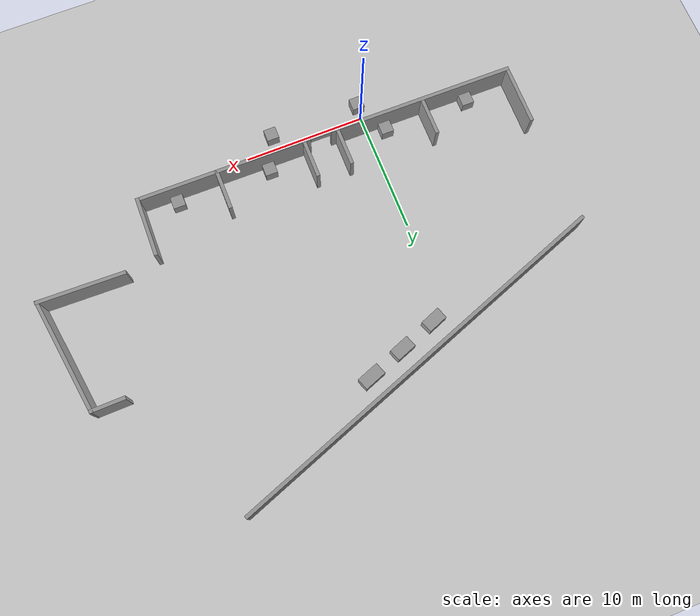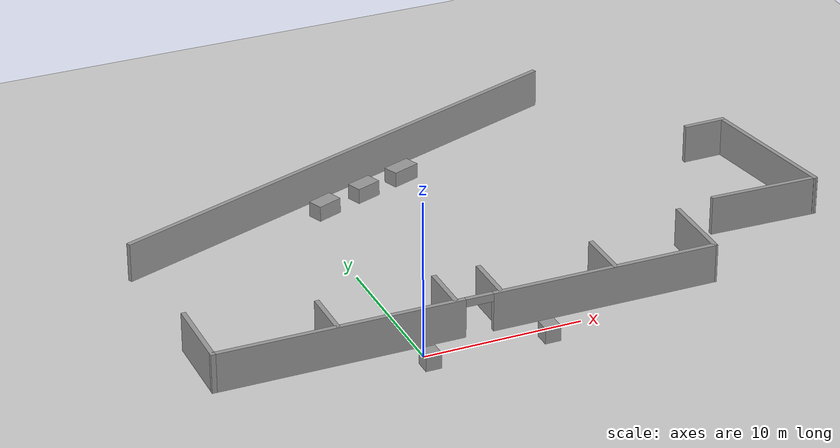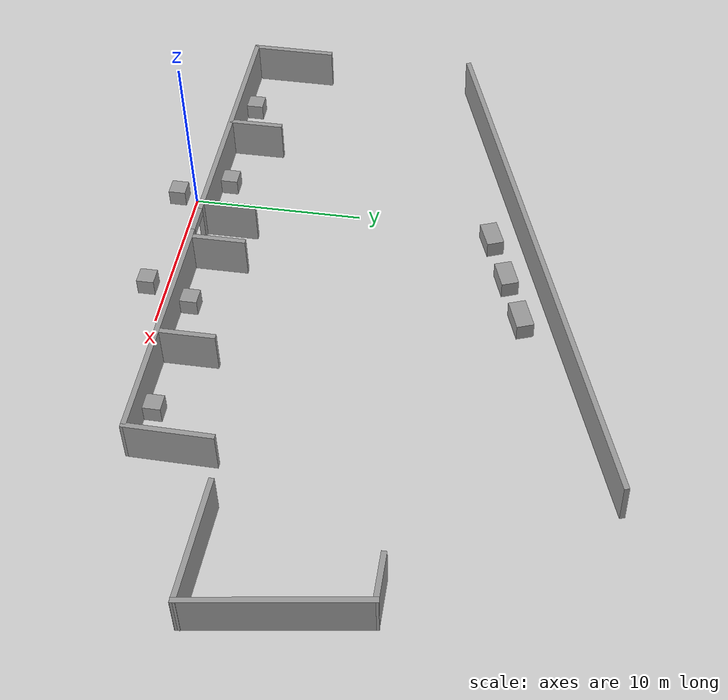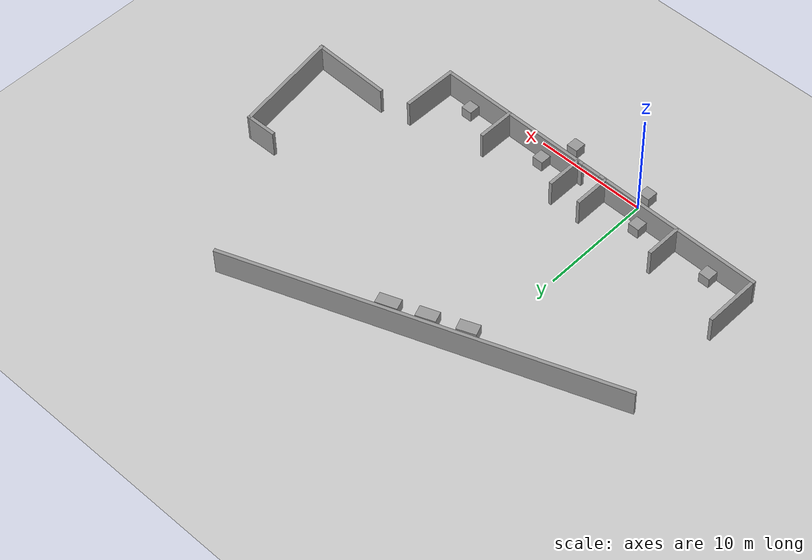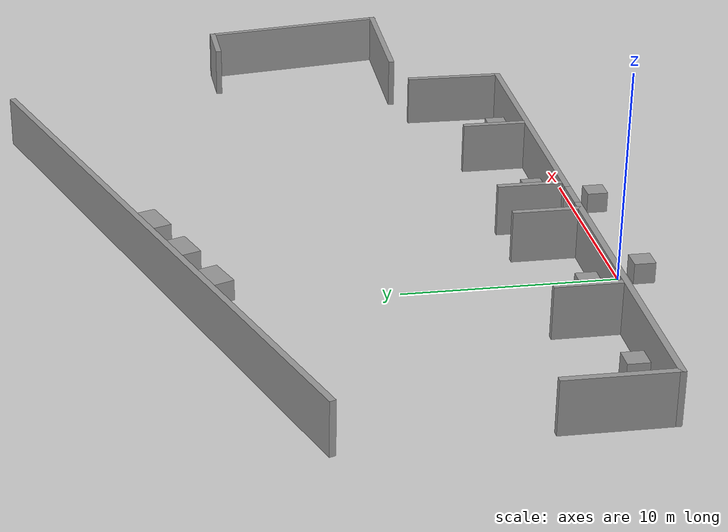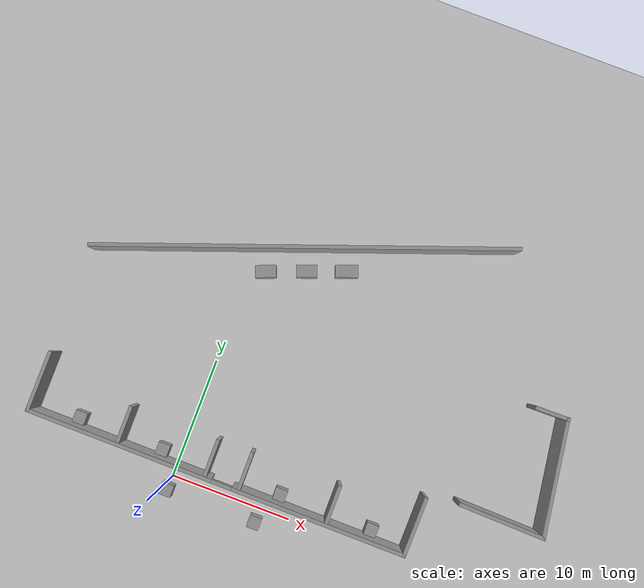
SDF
<sdf version="1.7">
 <world name="default">
  <light name="sun" type="directional">
   <pose>0 0 10 0 -0 0</pose>
   <diffuse>0.8 0.8 0.8 1</diffuse>
   <specular>0.2 0.2 0.2 1</specular>
   <attenuation>
    <range>1000</range>
    <constant>0.9</constant>
    <linear>0.01</linear>
    <quadratic>0.001</quadratic>
   </attenuation>
   <direction>-0.5 0.1 -0.9</direction>
   <spot><inner_angle>0</inner_angle><outer_angle>0</outer_angle><falloff>0</falloff></spot>
  </light>
  <model name="ground_plane">
   <static>1</static>
   <link name="link">
    <collision name="collision">
     <geometry><plane><normal>0 0 1</normal><size>100 100</size></plane></geometry>
     <surface><friction><ode><mu>100</mu><mu2>50</mu2></ode></friction></surface>
    </collision>
    <visual name="visual">
     <cast_shadows>0</cast_shadows>
     <geometry><plane><normal>0 0 1</normal><size>100 100</size></plane></geometry>
     <material>
      <script><uri>file://media/materials/scripts/gazebo.material</uri><name>Gazebo/Grey</name></script>
     </material>
    </visual>
   </link>
  </model>
  <gravity>0 0 -9.8</gravity>
  <magnetic_field>6e-06 2.3e-05 -4.2e-05</magnetic_field>
  <atmosphere type="adiabatic"/>
  <physics type="ode">
   <max_step_size>0.001</max_step_size>
   <real_time_factor>1</real_time_factor>
   <real_time_update_rate>1000</real_time_update_rate>
  </physics>
  <scene><ambient>0.4 0.4 0.4 1</ambient><background>0.7 0.7 0.7 1</background><shadows>1</shadows></scene>
  <spherical_coordinates>
   <surface_model>EARTH_WGS84</surface_model>
   <latitude_deg>0</latitude_deg>
   <longitude_deg>0</longitude_deg>
   <elevation>0</elevation>
   <heading_deg>0</heading_deg>
  </spherical_coordinates>
  <model name="WaA">
   <pose>8.28373 13.936 0 0 -0 3.14068</pose>
   <link name="Wall_11">
    <collision name="Wall_11_Collision">
     <geometry><box><size>3.25 0.3 2.5</size></box></geometry>
     <pose>0 0 1.25 0 -0 0</pose>
    </collision>
    <visual name="Wall_11_Visual">
     <pose>0 0 1.25 0 -0 0</pose>
     <geometry><box><size>3.25 0.3 2.5</size></box></geometry>
     <material>
      <script><uri>file://media/materials/scripts/gazebo.material</uri><name>Gazebo/Grey</name></script>
      <ambient>1 1 1 1</ambient>
     </material>
     <meta><layer>0</layer></meta>
    </visual>
    <pose>2.87692 11.1777 0 0 -0 -1.5708</pose>
   </link>
   <link name="Wall_13">
    <collision name="Wall_13_Collision">
     <geometry><box><size>3.40033 0.3 2.5</size></box></geometry>
     <pose>0 0 1.25 0 -0 0</pose>
    </collision>
    <visual name="Wall_13_Visual">
     <pose>0 0 1.25 0 -0 0</pose>
     <geometry><box><size>3.40033 0.3 2.5</size></box></geometry>
     <material>
      <script><uri>file://media/materials/scripts/gazebo.material</uri><name>Gazebo/Grey</name></script>
      <ambient>1 1 1 1</ambient>
     </material>
     <meta><layer>0</layer></meta>
    </visual>
    <pose>-4.46008 11.2527 0 0 -0 -1.5708</pose>
   </link>
   <link name="Wall_15">
    <collision name="Wall_15_Collision">
     <geometry><box><size>7.22818 0.3 2.5</size></box></geometry>
     <pose>0 0 1.25 0 -0 0</pose>
    </collision>
    <visual name="Wall_15_Visual">
     <pose>0 0 1.25 0 -0 0</pose>
     <geometry><box><size>7.22818 0.3 2.5</size></box></geometry>
     <material>
      <script><uri>file://media/materials/scripts/gazebo.material</uri><name>Gazebo/Grey</name></script>
      <ambient>1 1 1 1</ambient>
     </material>
     <meta><layer>0</layer></meta>
    </visual>
    <pose>-17.2551 7.67771 0 0 -0 3.11647</pose>
   </link>
   <link name="Wall_16">
    <collision name="Wall_16_Collision">
     <geometry><box><size>9.77782 0.3 2.5</size></box></geometry>
     <pose>0 0 1.25 0 -0 0</pose>
    </collision>
    <visual name="Wall_16_Visual">
     <pose>0 0 1.25 0 -0 0</pose>
     <geometry><box><size>9.77782 0.3 2.5</size></box></geometry>
     <material>
      <script><uri>file://media/materials/scripts/gazebo.material</uri><name>Gazebo/Grey</name></script>
      <ambient>1 1 1 1</ambient>
     </material>
     <meta><layer>0</layer></meta>
    </visual>
    <pose>-20.0186 3.07771 0 0 -0 -1.42265</pose>
   </link>
   <link name="Wall_17">
    <collision name="Wall_17_Collision">
     <geometry><box><size>2.85381 0.3 2.5</size></box></geometry>
     <pose>0 0 1.25 0 -0 0</pose>
    </collision>
    <visual name="Wall_17_Visual">
     <pose>0 0 1.25 0 -0 0</pose>
     <geometry><box><size>2.85381 0.3 2.5</size></box></geometry>
     <material>
      <script><uri>file://media/materials/scripts/gazebo.material</uri><name>Gazebo/Grey</name></script>
      <ambient>1 1 1 1</ambient>
     </material>
     <meta><layer>0</layer></meta>
    </visual>
    <pose>-18.0421 -1.59179 0 0 -0 0.013703</pose>
   </link>
   <link name="Wall_19">
    <collision name="Wall_19_Collision">
     <geometry><box><size>34.2393 0.3 2.5</size></box></geometry>
     <pose>0 0 1.25 0 -0 0</pose>
    </collision>
    <visual name="Wall_19_Visual">
     <pose>0 0 1.25 0 -0 0</pose>
     <geometry><box><size>34.2393 0.3 2.5</size></box></geometry>
     <material>
      <script><uri>file://media/materials/scripts/gazebo.material</uri><name>Gazebo/Grey</name></script>
      <ambient>1 1 1 1</ambient>
     </material>
     <meta><layer>0</layer></meta>
    </visual>
    <pose>4.75892 -6.99579 0 0 -0 0.350611</pose>
   </link>
   <link name="Wall_2">
    <collision name="Wall_2_Collision">
     <geometry><box><size>4.98926 0.3 2.5</size></box></geometry>
     <pose>0 0 1.25 0 -0 0</pose>
    </collision>
    <visual name="Wall_2_Visual">
     <pose>0 0 1.25 0 -0 0</pose>
     <geometry><box><size>4.98926 0.3 2.5</size></box></geometry>
     <material>
      <script><uri>file://media/materials/scripts/gazebo.material</uri><name>Gazebo/Grey</name></script>
      <ambient>1 1 1 1</ambient>
     </material>
     <meta><layer>0</layer></meta>
    </visual>
    <pose>-11.0566 10.5202 0 0 -0 1.55608</pose>
   </link>
   <link name="Wall_3">
    <pose>4.75942 12.7762 0 0 -0 -0.005608</pose>
    <visual name="Wall_3_Visual_0">
     <pose>-8.64145 0 1.25 0 -0 0</pose>
     <geometry><box><size>14.5808 0.3 2.5</size></box></geometry>
     <material>
      <script><uri>file://media/materials/scripts/gazebo.material</uri><name>Gazebo/Grey</name></script>
      <ambient>1 1 1 1</ambient>
     </material>
     <meta><layer>0</layer></meta>
    </visual>
    <collision name="Wall_3_Collision_0">
     <geometry><box><size>14.5808 0.3 2.5</size></box></geometry>
     <pose>-8.64145 0 1.25 0 -0 0</pose>
    </collision>
    <visual name="Wall_3_Visual_1">
     <pose>8.16107 0 1.25 0 -0 0</pose>
     <geometry><box><size>15.5415 0.3 2.5</size></box></geometry>
     <material>
      <script><uri>file://media/materials/scripts/gazebo.material</uri><name>Gazebo/Grey</name></script>
      <ambient>1 1 1 1</ambient>
     </material>
     <meta><layer>0</layer></meta>
    </visual>
    <collision name="Wall_3_Collision_1">
     <geometry><box><size>15.5415 0.3 2.5</size></box></geometry>
     <pose>8.16107 0 1.25 0 -0 0</pose>
    </collision>
    <visual name="Wall_3_Visual_2">
     <pose>-0.480377 0 2.25 0 -0 0</pose>
     <geometry><box><size>1.74139 0.3 0.5</size></box></geometry>
     <material>
      <script><uri>file://media/materials/scripts/gazebo.material</uri><name>Gazebo/Grey</name></script>
      <ambient>1 1 1 1</ambient>
     </material>
     <meta><layer>0</layer></meta>
    </visual>
    <collision name="Wall_3_Collision_2">
     <geometry><box><size>1.74139 0.3 0.5</size></box></geometry>
     <pose>-0.480377 0 2.25 0 -0 0</pose>
    </collision>
   </link>
   <link name="Wall_5">
    <collision name="Wall_5_Collision">
     <geometry><box><size>5.08438 0.3 2.5</size></box></geometry>
     <pose>0 0 1.25 0 -0 0</pose>
    </collision>
    <visual name="Wall_5_Visual">
     <pose>0 0 1.25 0 -0 0</pose>
     <geometry><box><size>5.08438 0.3 2.5</size></box></geometry>
     <material>
      <script><uri>file://media/materials/scripts/gazebo.material</uri><name>Gazebo/Grey</name></script>
      <ambient>1 1 1 1</ambient>
     </material>
     <meta><layer>0</layer></meta>
    </visual>
    <pose>20.5294 10.2957 0 0 -0 -1.5756</pose>
   </link>
   <link name="Wall_7">
    <collision name="Wall_7_Collision">
     <geometry><box><size>3.25 0.3 2.5</size></box></geometry>
     <pose>0 0 1.25 0 -0 0</pose>
    </collision>
    <visual name="Wall_7_Visual">
     <pose>0 0 1.25 0 -0 0</pose>
     <geometry><box><size>3.25 0.3 2.5</size></box></geometry>
     <material>
      <script><uri>file://media/materials/scripts/gazebo.material</uri><name>Gazebo/Grey</name></script>
      <ambient>1 1 1 1</ambient>
     </material>
     <meta><layer>0</layer></meta>
    </visual>
    <pose>13.0429 11.1497 0 0 -0 -1.5708</pose>
   </link>
   <link name="Wall_9">
    <collision name="Wall_9_Collision">
     <geometry><box><size>3.25 0.3 2.5</size></box></geometry>
     <pose>0 0 1.25 0 -0 0</pose>
    </collision>
    <visual name="Wall_9_Visual">
     <pose>0 0 1.25 0 -0 0</pose>
     <geometry><box><size>3.25 0.3 2.5</size></box></geometry>
     <material>
      <script><uri>file://media/materials/scripts/gazebo.material</uri><name>Gazebo/Grey</name></script>
      <ambient>1 1 1 1</ambient>
     </material>
     <meta><layer>0</layer></meta>
    </visual>
    <pose>5.72892 11.1957 0 0 -0 -1.5708</pose>
   </link>
   <static>1</static>
  </model>
  <model name="unit_box">
   <pose>7.47675 -1.02961 0.499995 -1e-05 0 0</pose>
   <link name="link">
    <inertial>
     <mass>1</mass>
     <inertia>
      <ixx>0.166667</ixx>
      <ixy>0</ixy>
      <ixz>0</ixz>
      <iyy>0.166667</iyy>
      <iyz>0</iyz>
      <izz>0.166667</izz>
     </inertia>
    </inertial>
    <collision name="collision"><geometry><box><size>1 1 1</size></box></geometry></collision>
    <visual name="visual">
     <geometry><box><size>1 1 1</size></box></geometry>
     <material>
      <script><name>Gazebo/Grey</name><uri>file://media/materials/scripts/gazebo.material</uri></script>
     </material>
    </visual>
   </link>
   <static>1</static>
  </model>
  <model name="unit_box_0">
   <pose>8.6378 1.78081 0.5 0 0 -0.006406</pose>
   <link name="link">
    <inertial>
     <mass>1</mass>
     <inertia>
      <ixx>0.166667</ixx>
      <ixy>0</ixy>
      <ixz>0</ixz>
      <iyy>0.166667</iyy>
      <iyz>0</iyz>
      <izz>0.166667</izz>
     </inertia>
    </inertial>
    <collision name="collision"><geometry><box><size>1 1 1</size></box></geometry></collision>
    <visual name="visual">
     <geometry><box><size>1 1 1</size></box></geometry>
     <material>
      <script><name>Gazebo/Grey</name><uri>file://media/materials/scripts/gazebo.material</uri></script>
     </material>
    </visual>
   </link>
   <static>1</static>
  </model>
  <model name="unit_box_1">
   <pose>-1.44849 1.84705 0.499995 0 -1e-05 -0.005498</pose>
   <link name="link">
    <inertial>
     <mass>1</mass>
     <inertia>
      <ixx>0.166667</ixx>
      <ixy>0</ixy>
      <ixz>0</ixz>
      <iyy>0.166667</iyy>
      <iyz>0</iyz>
      <izz>0.166667</izz>
     </inertia>
    </inertial>
    <collision name="collision"><geometry><box><size>1 1 1</size></box></geometry></collision>
    <visual name="visual">
     <geometry><box><size>1 1 1</size></box></geometry>
     <material>
      <script><name>Gazebo/Grey</name><uri>file://media/materials/scripts/gazebo.material</uri></script>
     </material>
    </visual>
   </link>
   <static>1</static>
  </model>
  <model name="unit_box_2">
   <pose>16.4474 1.73 0.5 0 0 -0.006598</pose>
   <link name="link">
    <inertial>
     <mass>1</mass>
     <inertia>
      <ixx>0.166667</ixx>
      <ixy>0</ixy>
      <ixz>0</ixz>
      <iyy>0.166667</iyy>
      <iyz>0</iyz>
      <izz>0.166667</izz>
     </inertia>
    </inertial>
    <collision name="collision"><geometry><box><size>1 1 1</size></box></geometry></collision>
    <visual name="visual">
     <geometry><box><size>1 1 1</size></box></geometry>
     <material>
      <script><name>Gazebo/Grey</name><uri>file://media/materials/scripts/gazebo.material</uri></script>
     </material>
    </visual>
   </link>
   <static>1</static>
  </model>
  <model name="unit_box_3">
   <pose>-8.57 1.89382 0.5 1e-06 -0 -0.004774</pose>
   <link name="link">
    <inertial>
     <mass>1</mass>
     <inertia>
      <ixx>0.166667</ixx>
      <ixy>0</ixy>
      <ixz>0</ixz>
      <iyy>0.166667</iyy>
      <iyz>0</iyz>
      <izz>0.166667</izz>
     </inertia>
    </inertial>
    <collision name="collision"><geometry><box><size>1 1 1</size></box></geometry></collision>
    <visual name="visual">
     <geometry><box><size>1 1 1</size></box></geometry>
     <material>
      <script><name>Gazebo/Grey</name><uri>file://media/materials/scripts/gazebo.material</uri></script>
     </material>
    </visual>
   </link>
   <static>1</static>
  </model>
  <model name="unit_box_4">
   <pose>-0.031252 -1.05432 0.499995 -1e-05 -0 -0.00478</pose>
   <link name="link">
    <inertial>
     <mass>1</mass>
     <inertia>
      <ixx>0.166667</ixx>
      <ixy>0</ixy>
      <ixz>0</ixz>
      <iyy>0.166667</iyy>
      <iyz>0</iyz>
      <izz>0.166667</izz>
     </inertia>
    </inertial>
    <collision name="collision"><geometry><box><size>1 1 1</size></box></geometry></collision>
    <visual name="visual">
     <geometry><box><size>1 1 1</size></box></geometry>
     <material>
      <script><name>Gazebo/Grey</name><uri>file://media/materials/scripts/gazebo.material</uri></script>
     </material>
    </visual>
   </link>
   <static>1</static>
  </model>
  <model name="unit_box_5">
   <pose>1.20762 18.1455 0.499998 4e-06 -0 0.374312</pose>
   <link name="link">
    <inertial>
     <mass>1</mass>
     <inertia>
      <ixx>0.166667</ixx>
      <ixy>0</ixy>
      <ixz>0</ixz>
      <iyy>0.166667</iyy>
      <iyz>0</iyz>
      <izz>0.166667</izz>
     </inertia>
    </inertial>
    <collision name="collision"><geometry><box><size>1.69469 1 1</size></box></geometry></collision>
    <visual name="visual">
     <geometry><box><size>1.69469 1 1</size></box></geometry>
     <material>
      <script><name>Gazebo/Grey</name><uri>file://media/materials/scripts/gazebo.material</uri></script>
     </material>
    </visual>
   </link>
   <static>1</static>
  </model>
  <model name="unit_box_6">
   <pose>4.30304 19.3219 0.5 0 -0 0.357605</pose>
   <link name="link">
    <inertial>
     <mass>1</mass>
     <inertia>
      <ixx>0.166667</ixx>
      <ixy>0</ixy>
      <ixz>0</ixz>
      <iyy>0.166667</iyy>
      <iyz>0</iyz>
      <izz>0.166667</izz>
     </inertia>
    </inertial>
    <collision name="collision"><geometry><box><size>1.71651 1 1</size></box></geometry></collision>
    <visual name="visual">
     <geometry><box><size>1.71651 1 1</size></box></geometry>
     <material>
      <script><name>Gazebo/Grey</name><uri>file://media/materials/scripts/gazebo.material</uri></script>
     </material>
    </visual>
   </link>
   <static>1</static>
  </model>
  <model name="unit_box_7">
   <pose>7.32688 20.4536 0.5 0 -0 0.356574</pose>
   <link name="link">
    <inertial>
     <mass>1</mass>
     <inertia>
      <ixx>0.166667</ixx>
      <ixy>0</ixy>
      <ixz>0</ixz>
      <iyy>0.166667</iyy>
      <iyz>0</iyz>
      <izz>0.166667</izz>
     </inertia>
    </inertial>
    <collision name="collision"><geometry><box><size>1.88404 1 1</size></box></geometry></collision>
    <visual name="visual">
     <geometry><box><size>1.88404 1 1</size></box></geometry>
     <material>
      <script><name>Gazebo/Grey</name><uri>file://media/materials/scripts/gazebo.material</uri></script>
     </material>
    </visual>
   </link>
   <static>1</static>
  </model>
 </world>
</sdf>
